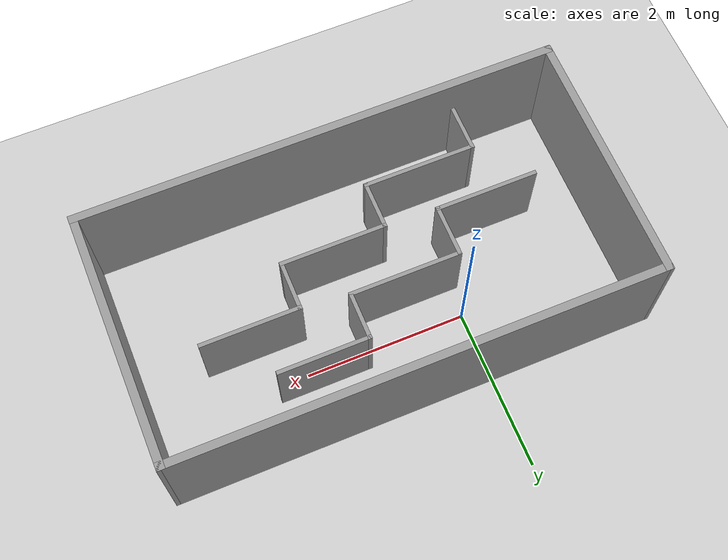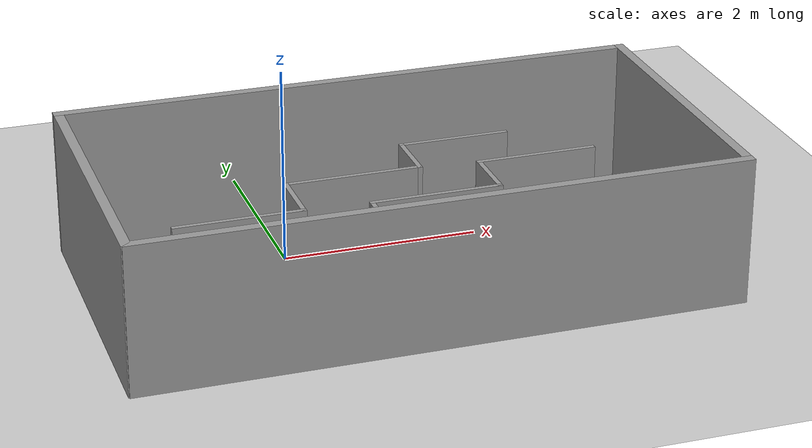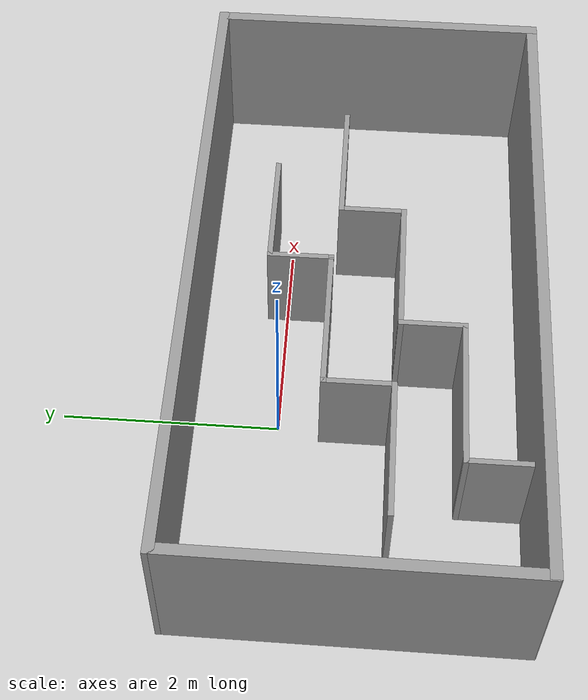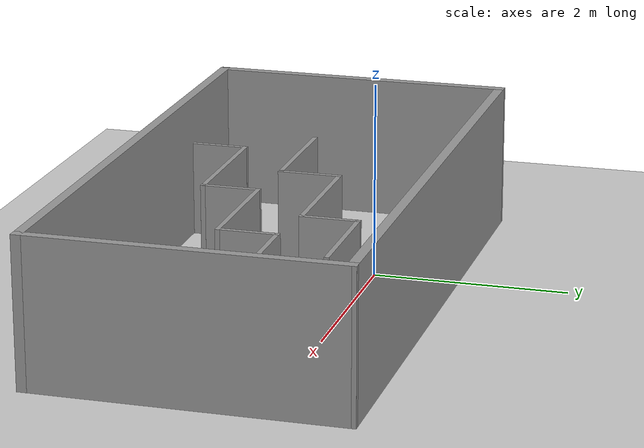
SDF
<sdf version="1.7">
 <world name="default">
  <light name="sun" type="directional">
   <pose>0 0 10 0 -0 0</pose>
   <diffuse>0.8 0.8 0.8 1</diffuse>
   <specular>0.2 0.2 0.2 1</specular>
   <attenuation>
    <range>1000</range>
    <constant>0.9</constant>
    <linear>0.01</linear>
    <quadratic>0.001</quadratic>
   </attenuation>
   <direction>-0.5 0.1 -0.9</direction>
   <spot><inner_angle>0</inner_angle><outer_angle>0</outer_angle><falloff>0</falloff></spot>
  </light>
  <model name="ground_plane">
   <static>1</static>
   <link name="link">
    <collision name="collision">
     <geometry><plane><normal>0 0 1</normal><size>100 100</size></plane></geometry>
     <surface><friction><ode><mu>100</mu><mu2>50</mu2></ode></friction></surface>
    </collision>
    <visual name="visual">
     <cast_shadows>0</cast_shadows>
     <geometry><plane><normal>0 0 1</normal><size>100 100</size></plane></geometry>
     <material>
      <script><uri>file://media/materials/scripts/gazebo.material</uri><name>Gazebo/Grey</name></script>
     </material>
    </visual>
   </link>
  </model>
  <gravity>0 0 -9.8</gravity>
  <magnetic_field>6e-06 2.3e-05 -4.2e-05</magnetic_field>
  <atmosphere type="adiabatic"/>
  <physics type="ode">
   <max_step_size>0.001</max_step_size>
   <real_time_factor>1</real_time_factor>
   <real_time_update_rate>1000</real_time_update_rate>
  </physics>
  <scene><ambient>0.4 0.4 0.4 1</ambient><background>0.7 0.7 0.7 1</background><shadows>1</shadows></scene>
  <audio><device>default</device></audio>
  <spherical_coordinates>
   <surface_model>EARTH_WGS84</surface_model>
   <latitude_deg>0</latitude_deg>
   <longitude_deg>0</longitude_deg>
   <elevation>0</elevation>
   <heading_deg>0</heading_deg>
  </spherical_coordinates>
  <model name="Parcial_World">
   <pose>0.932342 -0.708313 0 0 -0 0</pose>
   <link name="Wall_0">
    <collision name="Wall_0_Collision">
     <geometry><box><size>3.18002 0.1 1.5</size></box></geometry>
     <pose>0 0 0.75 0 -0 0</pose>
    </collision>
    <visual name="Wall_0_Visual">
     <pose>0 0 0.75 0 -0 0</pose>
     <geometry><box><size>3.18002 0.1 1.5</size></box></geometry>
     <material>
      <script><uri>file://media/materials/scripts/gazebo.material</uri><name>Gazebo/Grey</name></script>
      <ambient>1 1 1 1</ambient>
     </material>
     <meta><layer>0</layer></meta>
    </visual>
    <pose>-2.96996 0.004919 0 0 -0 1.56755</pose>
   </link>
   <link name="Wall_1">
    <collision name="Wall_1_Collision">
     <geometry><box><size>6.04001 0.1 1.5</size></box></geometry>
     <pose>0 0 0.75 0 -0 0</pose>
    </collision>
    <visual name="Wall_1_Visual">
     <pose>0 0 0.75 0 -0 0</pose>
     <geometry><box><size>6.04001 0.1 1.5</size></box></geometry>
     <material>
      <script><uri>file://media/materials/scripts/gazebo.material</uri><name>Gazebo/Grey</name></script>
      <ambient>1 1 1 1</ambient>
     </material>
     <meta><layer>0</layer></meta>
    </visual>
    <pose>0.005039 1.53992 0 0 -0 -0.001684</pose>
   </link>
   <link name="Wall_12">
    <collision name="Wall_12_Collision">
     <geometry><box><size>0.639841 0.05 1</size></box></geometry>
     <pose>0 0 0.5 0 -0 0</pose>
    </collision>
    <visual name="Wall_12_Visual">
     <pose>0 0 0.5 0 -0 0</pose>
     <geometry><box><size>0.639841 0.05 1</size></box></geometry>
     <material>
      <script><uri>file://media/materials/scripts/gazebo.material</uri><name>Gazebo/Grey</name></script>
      <ambient>1 1 1 1</ambient>
     </material>
     <meta><layer>0</layer></meta>
    </visual>
    <pose>0.944039 -0.054081 0 0 -0 1.5708</pose>
   </link>
   <link name="Wall_13">
    <collision name="Wall_13_Collision">
     <geometry><box><size>1.25 0.05 1</size></box></geometry>
     <pose>0 0 0.5 0 -0 0</pose>
    </collision>
    <visual name="Wall_13_Visual">
     <pose>0 0 0.5 0 -0 0</pose>
     <geometry><box><size>1.25 0.05 1</size></box></geometry>
     <material>
      <script><uri>file://media/materials/scripts/gazebo.material</uri><name>Gazebo/Grey</name></script>
      <ambient>1 1 1 1</ambient>
     </material>
     <meta><layer>0</layer></meta>
    </visual>
    <pose>1.54404 0.240919 0 0 -0 0</pose>
   </link>
   <link name="Wall_18">
    <collision name="Wall_18_Collision">
     <geometry><box><size>1.30562 0.05 1</size></box></geometry>
     <pose>0 0 0.5 0 -0 0</pose>
    </collision>
    <visual name="Wall_18_Visual">
     <pose>0 0 0.5 0 -0 0</pose>
     <geometry><box><size>1.30562 0.05 1</size></box></geometry>
     <material>
      <script><uri>file://media/materials/scripts/gazebo.material</uri><name>Gazebo/Grey</name></script>
      <ambient>1 1 1 1</ambient>
     </material>
     <meta><layer>0</layer></meta>
    </visual>
    <pose>-1.64196 -0.311081 0 0 -0 0</pose>
   </link>
   <link name="Wall_19">
    <collision name="Wall_19_Collision">
     <geometry><box><size>0.669894 0.05 1</size></box></geometry>
     <pose>0 0 0.5 0 -0 0</pose>
    </collision>
    <visual name="Wall_19_Visual">
     <pose>0 0 0.5 0 -0 0</pose>
     <geometry><box><size>0.669894 0.05 1</size></box></geometry>
     <material>
      <script><uri>file://media/materials/scripts/gazebo.material</uri><name>Gazebo/Grey</name></script>
      <ambient>1 1 1 1</ambient>
     </material>
     <meta><layer>0</layer></meta>
    </visual>
    <pose>-1.01396 -0.001081 0 0 -0 1.5708</pose>
   </link>
   <link name="Wall_2">
    <collision name="Wall_2_Collision">
     <geometry><box><size>3.18 0.1 1.5</size></box></geometry>
     <pose>0 0 0.75 0 -0 0</pose>
    </collision>
    <visual name="Wall_2_Visual">
     <pose>0 0 0.75 0 -0 0</pose>
     <geometry><box><size>3.18 0.1 1.5</size></box></geometry>
     <material>
      <script><uri>file://media/materials/scripts/gazebo.material</uri><name>Gazebo/Grey</name></script>
      <ambient>1 1 1 1</ambient>
     </material>
     <meta><layer>0</layer></meta>
    </visual>
    <pose>2.97504 -0.005081 0 0 -0 -1.5708</pose>
   </link>
   <link name="Wall_20">
    <collision name="Wall_20_Collision">
     <geometry><box><size>1.41068 0.05 1</size></box></geometry>
     <pose>0 0 0.5 0 -0 0</pose>
    </collision>
    <visual name="Wall_20_Visual">
     <pose>0 0 0.5 0 -0 0</pose>
     <geometry><box><size>1.41068 0.05 1</size></box></geometry>
     <material>
      <script><uri>file://media/materials/scripts/gazebo.material</uri><name>Gazebo/Grey</name></script>
      <ambient>1 1 1 1</ambient>
     </material>
     <meta><layer>0</layer></meta>
    </visual>
    <pose>-0.333461 0.308919 0 0 -0 0</pose>
   </link>
   <link name="Wall_21">
    <collision name="Wall_21_Collision">
     <geometry><box><size>0.617002 0.05 1</size></box></geometry>
     <pose>0 0 0.5 0 -0 0</pose>
    </collision>
    <visual name="Wall_21_Visual">
     <pose>0 0 0.5 0 -0 0</pose>
     <geometry><box><size>0.617002 0.05 1</size></box></geometry>
     <material>
      <script><uri>file://media/materials/scripts/gazebo.material</uri><name>Gazebo/Grey</name></script>
      <ambient>1 1 1 1</ambient>
     </material>
     <meta><layer>0</layer></meta>
    </visual>
    <pose>0.347039 0.592419 0 0 -0 1.5708</pose>
   </link>
   <link name="Wall_25">
    <collision name="Wall_25_Collision">
     <geometry><box><size>1.14968 0.05 1</size></box></geometry>
     <pose>0 0 0.5 0 -0 0</pose>
    </collision>
    <visual name="Wall_25_Visual">
     <pose>0 0 0.5 0 -0 0</pose>
     <geometry><box><size>1.14968 0.05 1</size></box></geometry>
     <material>
      <script><uri>file://media/materials/scripts/gazebo.material</uri><name>Gazebo/Grey</name></script>
      <ambient>1 1 1 1</ambient>
     </material>
     <meta><layer>0</layer></meta>
    </visual>
    <pose>0.897039 0.875919 0 0 -0 0</pose>
   </link>
   <link name="Wall_3">
    <collision name="Wall_3_Collision">
     <geometry><box><size>6.04 0.1 1.5</size></box></geometry>
     <pose>0 0 0.75 0 -0 0</pose>
    </collision>
    <visual name="Wall_3_Visual">
     <pose>0 0 0.75 0 -0 0</pose>
     <geometry><box><size>6.04 0.1 1.5</size></box></geometry>
     <material>
      <script><uri>file://media/materials/scripts/gazebo.material</uri><name>Gazebo/Grey</name></script>
      <ambient>1 1 1 1</ambient>
     </material>
     <meta><layer>0</layer></meta>
    </visual>
    <pose>0.005039 -1.54508 0 0 -0 3.14159</pose>
   </link>
   <link name="Wall_6">
    <collision name="Wall_6_Collision">
     <geometry><box><size>0.63238 0.05 1</size></box></geometry>
     <pose>0 0 0.5 0 -0 0</pose>
    </collision>
    <visual name="Wall_6_Visual">
     <pose>0 0 0.5 0 -0 0</pose>
     <geometry><box><size>0.63238 0.05 1</size></box></geometry>
     <material>
      <script><uri>file://media/materials/scripts/gazebo.material</uri><name>Gazebo/Grey</name></script>
      <ambient>1 1 1 1</ambient>
     </material>
     <meta><layer>0</layer></meta>
    </visual>
    <pose>-1.73296 -1.21508 0 0 -0 1.5708</pose>
   </link>
   <link name="Wall_7">
    <collision name="Wall_7_Collision">
     <geometry><box><size>1.43403 0.05 1</size></box></geometry>
     <pose>0 0 0.5 0 -0 0</pose>
    </collision>
    <visual name="Wall_7_Visual">
     <pose>0 0 0.5 0 -0 0</pose>
     <geometry><box><size>1.43403 0.05 1</size></box></geometry>
     <material>
      <script><uri>file://media/materials/scripts/gazebo.material</uri><name>Gazebo/Grey</name></script>
      <ambient>1 1 1 1</ambient>
     </material>
     <meta><layer>0</layer></meta>
    </visual>
    <pose>-1.04096 -0.924081 0 0 -0 0</pose>
   </link>
   <link name="Wall_8">
    <collision name="Wall_8_Collision">
     <geometry><box><size>0.625049 0.05 1</size></box></geometry>
     <pose>0 0 0.5 0 -0 0</pose>
    </collision>
    <visual name="Wall_8_Visual">
     <pose>0 0 0.5 0 -0 0</pose>
     <geometry><box><size>0.625049 0.05 1</size></box></geometry>
     <material>
      <script><uri>file://media/materials/scripts/gazebo.material</uri><name>Gazebo/Grey</name></script>
      <ambient>1 1 1 1</ambient>
     </material>
     <meta><layer>0</layer></meta>
    </visual>
    <pose>-0.348961 -0.636581 0 0 -0 1.5708</pose>
   </link>
   <link name="Wall_9">
    <collision name="Wall_9_Collision">
     <geometry><box><size>1.34304 0.05 1</size></box></geometry>
     <pose>0 0 0.5 0 -0 0</pose>
    </collision>
    <visual name="Wall_9_Visual">
     <pose>0 0 0.5 0 -0 0</pose>
     <geometry><box><size>1.34304 0.05 1</size></box></geometry>
     <material>
      <script><uri>file://media/materials/scripts/gazebo.material</uri><name>Gazebo/Grey</name></script>
      <ambient>1 1 1 1</ambient>
     </material>
     <meta><layer>0</layer></meta>
    </visual>
    <pose>0.297539 -0.349081 0 0 -0 0</pose>
   </link>
   <static>1</static>
  </model>
 </world>
</sdf>
